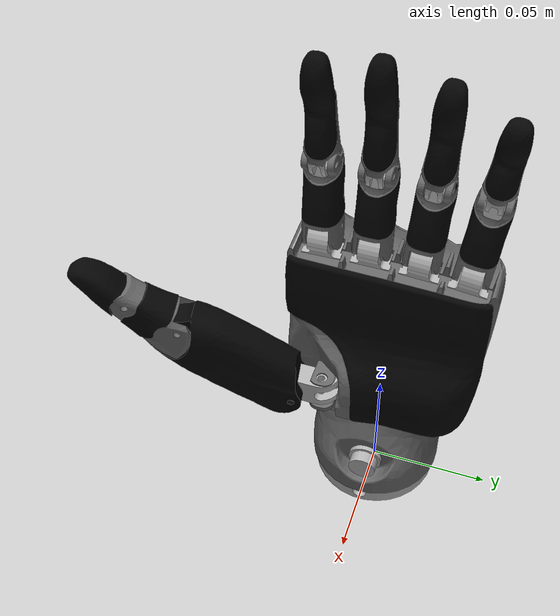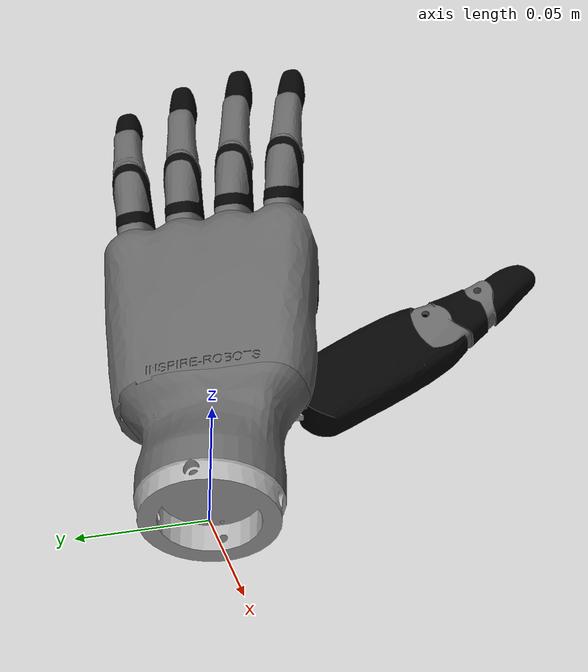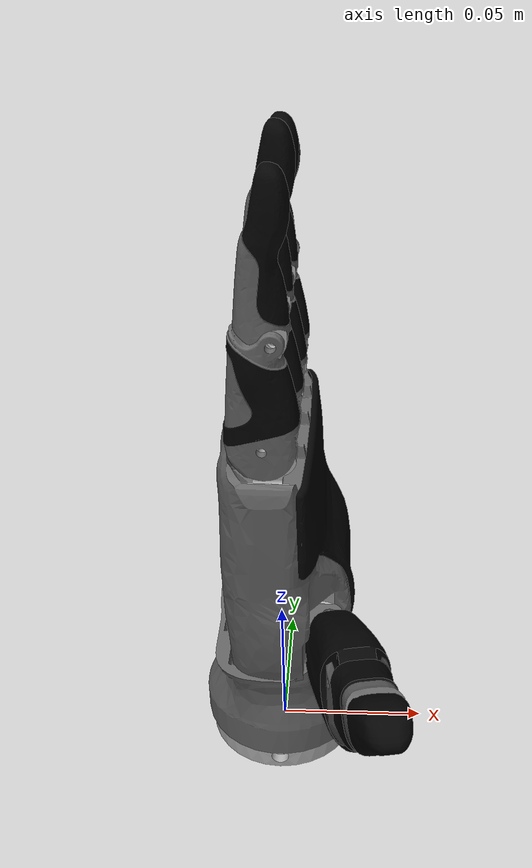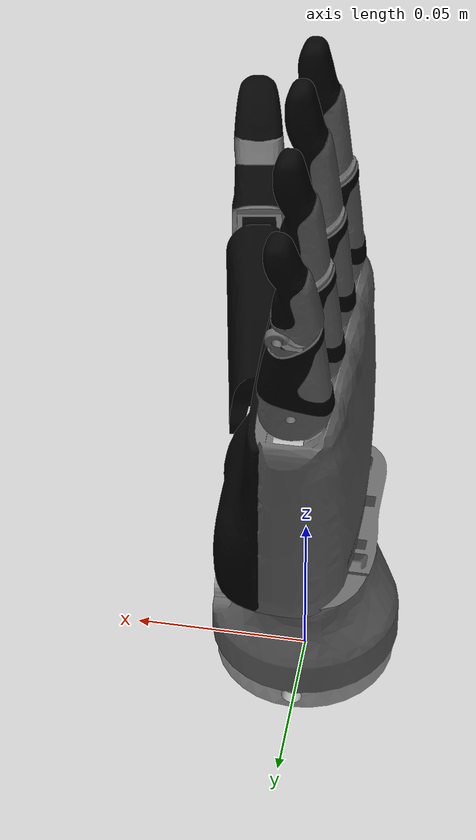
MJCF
<mujoco model="inspire_hand_left">
  <compiler angle="radian" autolimits="true" />
  <option gravity="0 0 0" timestep="0.001" />
  <visual>
    <global offwidth="3840" offheight="2160" />
  </visual>
  <asset>
    <mesh name="left_base_link_visual000" content_type="model/obj" file="meshes/visual/left_base_link_visual000.obj" />
    <mesh name="left_base_link_visual001" content_type="model/obj" file="meshes/visual/left_base_link_visual001.obj" />
    <mesh name="left_base_link_visual002" content_type="model/obj" file="meshes/visual/left_base_link_visual002.obj" />
    <mesh name="left_base_link_visual003" content_type="model/obj" file="meshes/visual/left_base_link_visual003.obj" />
    <mesh name="left_base_link_visual004" content_type="model/obj" file="meshes/visual/left_base_link_visual004.obj" />
    <mesh name="left_thumb_proximal_base" content_type="model/obj" file="meshes/visual/left_thumb_proximal_base.obj" />
    <mesh name="left_thumb_proximal_base_collision000" content_type="model/obj" file="meshes/collision/left_thumb_proximal_base_collision000.obj" />
    <mesh name="left_thumb_proximal_base_collision001" content_type="model/obj" file="meshes/collision/left_thumb_proximal_base_collision001.obj" />
    <mesh name="left_thumb_proximal" content_type="model/obj" file="meshes/visual/left_thumb_proximal.obj" />
    <mesh name="left_thumb_proximal_collision000" content_type="model/obj" file="meshes/collision/left_thumb_proximal_collision000.obj" />
    <mesh name="left_thumb_intermediate_visual000" content_type="model/obj" file="meshes/visual/left_thumb_intermediate_visual000.obj" />
    <mesh name="left_thumb_intermediate_visual001" content_type="model/obj" file="meshes/visual/left_thumb_intermediate_visual001.obj" />
    <mesh name="left_thumb_intermediate_visual002" content_type="model/obj" file="meshes/visual/left_thumb_intermediate_visual002.obj" />
    <mesh name="left_thumb_intermediate_collision000" content_type="model/obj" file="meshes/collision/left_thumb_intermediate_collision000.obj" />
    <mesh name="left_thumb_distal_visual000" content_type="model/obj" file="meshes/visual/left_thumb_distal_visual000.obj" />
    <mesh name="left_thumb_distal_visual001" content_type="model/obj" file="meshes/visual/left_thumb_distal_visual001.obj" />
    <mesh name="left_thumb_distal_collision000" content_type="model/obj" file="meshes/collision/left_thumb_distal_collision000.obj" />
    <mesh name="left_thumb_distal_collision001" content_type="model/obj" file="meshes/collision/left_thumb_distal_collision001.obj" />
    <mesh name="left_index_proximal_visual000" content_type="model/obj" file="meshes/visual/left_index_proximal_visual000.obj" />
    <mesh name="left_index_proximal_visual001" content_type="model/obj" file="meshes/visual/left_index_proximal_visual001.obj" />
    <mesh name="left_index_proximal_collision000" content_type="model/obj" file="meshes/collision/left_index_proximal_collision000.obj" />
    <mesh name="left_index_proximal_collision001" content_type="model/obj" file="meshes/collision/left_index_proximal_collision001.obj" />
    <mesh name="left_index_intermediate_visual000" content_type="model/obj" file="meshes/visual/left_index_intermediate_visual000.obj" />
    <mesh name="left_index_intermediate_visual001" content_type="model/obj" file="meshes/visual/left_index_intermediate_visual001.obj" />
    <mesh name="left_index_intermediate_visual002" content_type="model/obj" file="meshes/visual/left_index_intermediate_visual002.obj" />
    <mesh name="left_index_intermediate_collision000" content_type="model/obj" file="meshes/collision/left_index_intermediate_collision000.obj" />
    <mesh name="left_index_intermediate_collision001" content_type="model/obj" file="meshes/collision/left_index_intermediate_collision001.obj" />
    <mesh name="left_index_intermediate_collision002" content_type="model/obj" file="meshes/collision/left_index_intermediate_collision002.obj" />
    <mesh name="left_middle_intermediate_visual000" content_type="model/obj" file="meshes/visual/left_middle_intermediate_visual000.obj" />
    <mesh name="left_middle_intermediate_visual001" content_type="model/obj" file="meshes/visual/left_middle_intermediate_visual001.obj" />
    <mesh name="left_middle_intermediate_visual002" content_type="model/obj" file="meshes/visual/left_middle_intermediate_visual002.obj" />
    <mesh name="left_middle_intermediate_collision000" content_type="model/obj" file="meshes/collision/left_middle_intermediate_collision000.obj" />
    <mesh name="left_pinky_intermediate_visual000" content_type="model/obj" file="meshes/visual/left_pinky_intermediate_visual000.obj" />
    <mesh name="left_pinky_intermediate_visual001" content_type="model/obj" file="meshes/visual/left_pinky_intermediate_visual001.obj" />
    <mesh name="left_pinky_intermediate_visual002" content_type="model/obj" file="meshes/visual/left_pinky_intermediate_visual002.obj" />
    <mesh name="left_pinky_intermediate_collision000" content_type="model/obj" file="meshes/collision/left_pinky_intermediate_collision000.obj" />
    <material name="left_base_link_visual000_material" rgba="0.40000000 0.40000000 0.40000000 1" />
    <material name="left_base_link_visual001_material" rgba="0.69803922 0.69803922 0.69803922 1" />
    <material name="left_base_link_visual002_material" rgba="0.01568627 0.01568627 0.01568627 1" />
    <material name="left_base_link_visual003_material" rgba="0.40000000 0.40000000 0.40000000 1" />
    <material name="left_base_link_visual004_material" rgba="0.69803922 0.69803922 0.69803922 1" />
    <material name="left_thumb_proximal_base_material" rgba="0.69803922 0.69803922 0.69803922 1" />
    <material name="left_thumb_proximal_material" rgba="0.01568627 0.01568627 0.01568627 1" />
    <material name="left_thumb_intermediate_visual000_material" rgba="0.40000000 0.40000000 0.40000000 1" />
    <material name="left_thumb_intermediate_visual001_material" rgba="0.40000000 0.40000000 0.40000000 1" />
    <material name="left_thumb_intermediate_visual002_material" rgba="0.01568627 0.01568627 0.01568627 1" />
    <material name="left_thumb_distal_visual000_material" rgba="0.69803922 0.69803922 0.69803922 1" />
    <material name="left_thumb_distal_visual001_material" rgba="0.01568627 0.01568627 0.01568627 1" />
    <material name="left_index_proximal_visual000_material" rgba="0.40000000 0.40000000 0.40000000 1" />
    <material name="left_index_proximal_visual001_material" rgba="0.01568627 0.01568627 0.01568627 1" />
    <material name="left_index_intermediate_visual000_material" rgba="0.40000000 0.40000000 0.40000000 1" />
    <material name="left_index_intermediate_visual001_material" rgba="0.69803922 0.69803922 0.69803922 1" />
    <material name="left_index_intermediate_visual002_material" rgba="0.01568627 0.01568627 0.01568627 1" />
    <material name="left_middle_intermediate_visual000_material" rgba="0.40000000 0.40000000 0.40000000 1" />
    <material name="left_middle_intermediate_visual001_material" rgba="0.69803922 0.69803922 0.69803922 1" />
    <material name="left_middle_intermediate_visual002_material" rgba="0.01568627 0.01568627 0.01568627 1" />
    <material name="left_pinky_intermediate_visual000_material" rgba="0.69803922 0.69803922 0.69803922 1" />
    <material name="left_pinky_intermediate_visual001_material" rgba="0.40000000 0.40000000 0.40000000 1" />
    <material name="left_pinky_intermediate_visual002_material" rgba="0.01568627 0.01568627 0.01568627 1" />
    <texture type="skybox" builtin="gradient" rgb1="1 1 1" rgb2="1 1 1" width="32" height="512" />
  </asset>
  <worldbody>
    <light pos="0 0 5" dir="0 0 -1" directional="true" />
    <body name="hand_root">
      <joint name="hand_root_joint" type="free"/>
      <body name="hand_base_link" quat="9.38186e-07 -9.38186e-07 -0.707107 0.707107">
        <inertial pos="-0.0025264 -0.066047 -0.0019598" quat="0.993005 -0.113528 -0.0210604 0.0246792" mass="0.14143" diaginertia="0.000122991 8.41186e-05 7.61951e-05" />
        <geom name="hand_base_link_left_base_link_visual000" type="mesh" contype="0" conaffinity="0" group="1" density="0" mesh="left_base_link_visual000" material="left_base_link_visual000_material" />
        <geom name="hand_base_link_left_base_link_visual001" type="mesh" contype="0" conaffinity="0" group="1" density="0" mesh="left_base_link_visual001" material="left_base_link_visual001_material" />
        <geom name="hand_base_link_left_base_link_visual002" type="mesh" contype="0" conaffinity="0" group="1" density="0" mesh="left_base_link_visual002" material="left_base_link_visual002_material" />
        <geom name="hand_base_link_left_base_link_visual003" type="mesh" contype="0" conaffinity="0" group="1" density="0" mesh="left_base_link_visual003" material="left_base_link_visual003_material" />
        <geom name="hand_base_link_left_base_link_visual004" type="mesh" contype="0" conaffinity="0" group="1" density="0" mesh="left_base_link_visual004" material="left_base_link_visual004_material" />
        <geom size="0.028 0.0139" pos="0 -0.0136 0" quat="0.707109 0.707105 0 0" type="cylinder" group="3" />
        <geom size="0.01955 0.0101 0.0287" pos="-0.0032 -0.038 0" type="box" group="3" />
        <geom size="0.01955 0.02 0.0407" pos="-0.0032 -0.0682 0" type="box" group="3" />
        <geom size="0.0161 0.02 0.0407" pos="0 -0.1081 0" type="box" group="3" />
        <geom size="0.00625 0.00555 0.00445" pos="-0.0016 -0.134 -0.0309" type="box" group="3" />
        <geom size="0.00625 0.00555 0.00445" pos="-0.0016 -0.134 -0.0118" type="box" group="3" />
        <geom size="0.00625 0.00555 0.00445" pos="-0.0016 -0.134 0.007" type="box" group="3" />
        <geom size="0.00625 0.00555 0.00445" pos="-0.0016 -0.134 0.0262" type="box" group="3" />
        <body name="thumb_proximal_base" pos="-0.01696 -0.0691 0.02045" quat="0.499998 0.5 -0.5 0.500002">
          <inertial pos="0.0048817 0.0009382 -0.00722" quat="0.408023 0.323596 0.515015 0.680854" mass="0.0018869" diaginertia="8.66026e-08 6.8732e-08 4.94194e-08" />
          <joint name="thumb_proximal_yaw_joint" pos="0 0 0" axis="0 0 1" range="0 1.308" actuatorfrcrange="-1 1" damping="0.1" armature="0.0002" frictionloss="0.0" />
          <geom name="thumb_proximal_base_left_thumb_proximal_base_visual" type="mesh" contype="0" conaffinity="0" group="1" density="0" mesh="left_thumb_proximal_base" material="left_thumb_proximal_base_material" />
          <geom name="thumb_proximal_base_collision_part000" type="mesh" mesh="left_thumb_proximal_base_collision000" group="3" />
          <geom name="thumb_proximal_base_collision_part001" type="mesh" mesh="left_thumb_proximal_base_collision001" group="3" />
          <body name="thumb_proximal" pos="0.0099867 0.0098242 -0.0089" quat="0.704571 -0.704573 -0.0598169 0.0598167">
            <inertial pos="0.021932 -0.012785 -0.0080386" quat="0.254474 0.660716 -0.251893 0.659733" mass="0.0066075" diaginertia="2.78601e-06 2.43933e-06 8.64566e-07" />
            <joint name="thumb_proximal_pitch_joint" pos="0 0 0" axis="0 0 -1" range="0 0.6" actuatorfrcrange="-1 1" damping="0.1" armature="0.0002" frictionloss="0.0" />
            <geom name="thumb_proximal_left_thumb_proximal_visual" type="mesh" contype="0" conaffinity="0" group="1" density="0" mesh="left_thumb_proximal" material="left_thumb_proximal_material" />
            <geom type="mesh" mesh="left_thumb_proximal_collision000" group="3" />
            <body name="thumb_intermediate" pos="0.04407 -0.034553 -0.0008">
              <inertial pos="0.0095544 0.0016282 -0.0071997" quat="0.307389 0.636718 -0.307548 0.636802" mass="0.0037847" diaginertia="4.6531e-07 4.48089e-07 2.45661e-07" />
              <joint name="thumb_intermediate_joint" pos="0 0 0" axis="0 0 -1" range="0 0.8" actuatorfrcrange="-1 1" damping="0.0" armature="0.0" frictionloss="0.0" />
              <geom name="thumb_intermediate_left_thumb_intermediate_visual000" type="mesh" contype="0" conaffinity="0" group="1" density="0" mesh="left_thumb_intermediate_visual000" material="left_thumb_intermediate_visual000_material" />
              <geom name="thumb_intermediate_left_thumb_intermediate_visual001" type="mesh" contype="0" conaffinity="0" group="1" density="0" mesh="left_thumb_intermediate_visual001" material="left_thumb_intermediate_visual001_material" />
              <geom name="thumb_intermediate_left_thumb_intermediate_visual002" type="mesh" contype="0" conaffinity="0" group="1" density="0" mesh="left_thumb_intermediate_visual002" material="left_thumb_intermediate_visual002_material" />
              <geom type="mesh" mesh="left_thumb_intermediate_collision000" group="3" />
              <body name="thumb_distal" pos="0.020248 -0.010156 -0.0012">
                <inertial pos="0.0092888 -0.0049529 -0.0060033" quat="0.266294 0.655967 -0.262806 0.655537" mass="0.0033441" diaginertia="2.0026e-07 1.95247e-07 8.1593e-08" />
                <joint name="thumb_distal_joint" pos="0 0 0" axis="0 0 -1" range="0 0.4" actuatorfrcrange="-1 1" damping="0.0" armature="0.0" frictionloss="0.0" />
                <geom name="thumb_distal_left_thumb_distal_visual000" type="mesh" contype="0" conaffinity="0" group="1" density="0" mesh="left_thumb_distal_visual000" material="left_thumb_distal_visual000_material" />
                <geom name="thumb_distal_left_thumb_distal_visual001" type="mesh" contype="0" conaffinity="0" group="1" density="0" mesh="left_thumb_distal_visual001" material="left_thumb_distal_visual001_material" />
                <geom name="thumb_distal_collision_part000" type="mesh" mesh="left_thumb_distal_collision000" group="3" />
                <geom name="thumb_distal_collision_part001" type="mesh" mesh="left_thumb_distal_collision001" group="3" />
                <body name="thumb_tip" pos="0.0202 -0.014 -0.006" />
              </body>
            </body>
          </body>
        </body>
        <body name="index_proximal" pos="0.00028533 -0.13653 0.032268" quat="0.999848 -0.0174526 0 0">
          <inertial pos="0.0012259 -0.011942 -0.0060001" quat="0.49121 0.50867 -0.491172 0.508643" mass="0.0042403" diaginertia="6.9398e-07 6.62871e-07 2.10909e-07" />
          <joint name="index_proximal_joint" pos="0 0 0" axis="0 0 -1" range="0 1.47" actuatorfrcrange="-1 1" damping="0.1" armature="0.0002" frictionloss="0.0" />
          <geom name="index_proximal_left_index_proximal_visual000" type="mesh" contype="0" conaffinity="0" group="1" density="0" mesh="left_index_proximal_visual000" material="left_index_proximal_visual000_material" />
          <geom name="index_proximal_left_index_proximal_visual001" type="mesh" contype="0" conaffinity="0" group="1" density="0" mesh="left_index_proximal_visual001" material="left_index_proximal_visual001_material" />
          <geom name="index_proximal_collision_part000" type="mesh" mesh="left_index_proximal_collision000" group="3" />
          <geom name="index_proximal_collision_part001" type="mesh" mesh="left_index_proximal_collision001" group="3" />
          <body name="index_intermediate" pos="-0.0026138 -0.032026 -0.001">
            <inertial pos="0.0019697 -0.019589 -0.005" quat="0.531152 0.466773 -0.531153 0.466773" mass="0.0045683" diaginertia="7.8179e-07 7.72465e-07 8.47212e-08" />
            <joint name="index_intermediate_joint" pos="0 0 0" axis="0 0 -1" range="-0.04545 1.56" actuatorfrcrange="-1 1" damping="0.0" armature="0.0" frictionloss="0.0" />
            <geom name="index_intermediate_left_index_intermediate_visual000" type="mesh" contype="0" conaffinity="0" group="1" density="0" mesh="left_index_intermediate_visual000" material="left_index_intermediate_visual000_material" />
            <geom name="index_intermediate_left_index_intermediate_visual001" type="mesh" contype="0" conaffinity="0" group="1" density="0" mesh="left_index_intermediate_visual001" material="left_index_intermediate_visual001_material" />
            <geom name="index_intermediate_left_index_intermediate_visual002" type="mesh" contype="0" conaffinity="0" group="1" density="0" mesh="left_index_intermediate_visual002" material="left_index_intermediate_visual002_material" />
            <geom name="index_intermediate_collision_part000" type="mesh" mesh="left_index_intermediate_collision000" group="3" />
            <geom name="index_intermediate_collision_part001" type="mesh" mesh="left_index_intermediate_collision001" group="3" />
            <geom name="index_intermediate_collision_part002" type="mesh" mesh="left_index_intermediate_collision002" group="3" />
            <body name="index_tip" pos="-0.0008 -0.045 -0.005" />
          </body>
        </body>
        <body name="middle_proximal" pos="0.00028533 -0.1371 0.01295">
          <inertial pos="0.001297 -0.011934 -0.0060001" quat="0.489693 0.510131 -0.489653 0.510105" mass="0.0042403" diaginertia="6.9397e-07 6.62865e-07 2.10915e-07" />
          <joint name="middle_proximal_joint" pos="0 0 0" axis="0 0 -1" range="0 1.47" actuatorfrcrange="-1 1" damping="0.1" armature="0.0002" frictionloss="0.0" />
          <geom name="middle_proximal_left_index_proximal_visual000" type="mesh" contype="0" conaffinity="0" group="1" density="0" mesh="left_index_proximal_visual000" material="left_index_proximal_visual000_material" />
          <geom name="middle_proximal_left_index_proximal_visual001" type="mesh" contype="0" conaffinity="0" group="1" density="0" mesh="left_index_proximal_visual001" material="left_index_proximal_visual001_material" />
          <geom name="middle_proximal_collision_part000" type="mesh" mesh="left_index_proximal_collision000" group="3" />
          <geom name="middle_proximal_collision_part001" type="mesh" mesh="left_index_proximal_collision001" group="3" />
          <body name="middle_intermediate" pos="-0.0024229 -0.032041 -0.001">
            <inertial pos="0.001921 -0.020796 -0.005" quat="0.531627 0.466148 -0.531705 0.466229" mass="0.0050396" diaginertia="9.8384e-07 9.73279e-07 9.14014e-08" />
            <joint name="middle_intermediate_joint" pos="0 0 0" axis="0 0 -1" range="-0.04545 1.56" actuatorfrcrange="-1 1" damping="0.0" armature="0.0" frictionloss="0.0" />
            <geom name="middle_intermediate_left_middle_intermediate_visual000" type="mesh" contype="0" conaffinity="0" group="1" density="0" mesh="left_middle_intermediate_visual000" material="left_middle_intermediate_visual000_material" />
            <geom name="middle_intermediate_left_middle_intermediate_visual001" type="mesh" contype="0" conaffinity="0" group="1" density="0" mesh="left_middle_intermediate_visual001" material="left_middle_intermediate_visual001_material" />
            <geom name="middle_intermediate_left_middle_intermediate_visual002" type="mesh" contype="0" conaffinity="0" group="1" density="0" mesh="left_middle_intermediate_visual002" material="left_middle_intermediate_visual002_material" />
            <geom type="mesh" mesh="left_middle_intermediate_collision000" group="3" />
            <body name="middle_tip" pos="-0.001 -0.048 -0.005" />
          </body>
        </body>
        <body name="ring_proximal" pos="0.00028533 -0.13691 -0.0062872" quat="0.999657 0.026177 0 0">
          <inertial pos="0.001297 -0.011934 -0.0060002" quat="0.489691 0.510129 -0.489654 0.510107" mass="0.0042403" diaginertia="6.9397e-07 6.62865e-07 2.10915e-07" />
          <joint name="ring_proximal_joint" pos="0 0 0" axis="0 0 -1" range="0 1.47" actuatorfrcrange="-1 1" damping="0.1" armature="0.0002" frictionloss="0.0" />
          <geom name="ring_proximal_left_index_proximal_visual000" type="mesh" contype="0" conaffinity="0" group="1" density="0" mesh="left_index_proximal_visual000" material="left_index_proximal_visual000_material" />
          <geom name="ring_proximal_left_index_proximal_visual001" type="mesh" contype="0" conaffinity="0" group="1" density="0" mesh="left_index_proximal_visual001" material="left_index_proximal_visual001_material" />
          <geom name="ring_proximal_collision_part000" type="mesh" mesh="left_index_proximal_collision000" group="3" />
          <geom name="ring_proximal_collision_part001" type="mesh" mesh="left_index_proximal_collision001" group="3" />
          <body name="ring_intermediate" pos="-0.0024229 -0.032041 -0.001">
            <inertial pos="0.0021753 -0.019567 -0.005" quat="0.528695 0.469554 -0.528695 0.469554" mass="0.0045683" diaginertia="7.8177e-07 7.72448e-07 8.4722e-08" />
            <joint name="ring_intermediate_joint" pos="0 0 0" axis="0 0 -1" range="-0.04545 1.56" actuatorfrcrange="-1 1" damping="0.0" armature="0.0" frictionloss="0.0" />
            <geom name="ring_intermediate_left_index_intermediate_visual000" type="mesh" contype="0" conaffinity="0" group="1" density="0" mesh="left_index_intermediate_visual000" material="left_index_intermediate_visual000_material" />
            <geom name="ring_intermediate_left_index_intermediate_visual001" type="mesh" contype="0" conaffinity="0" group="1" density="0" mesh="left_index_intermediate_visual001" material="left_index_intermediate_visual001_material" />
            <geom name="ring_intermediate_left_index_intermediate_visual002" type="mesh" contype="0" conaffinity="0" group="1" density="0" mesh="left_index_intermediate_visual002" material="left_index_intermediate_visual002_material" />
            <geom name="ring_intermediate_collision_part000" type="mesh" mesh="left_index_intermediate_collision000" group="3" />
            <geom name="ring_intermediate_collision_part001" type="mesh" mesh="left_index_intermediate_collision001" group="3" />
            <geom name="ring_intermediate_collision_part002" type="mesh" mesh="left_index_intermediate_collision002" group="3" />
            <body name="ring_tip" pos="-0.0008 -0.045 -0.005" />
          </body>
        </body>
        <body name="pinky_proximal" pos="0.00028533 -0.13571 -0.025488" quat="0.99863 0.0523361 0 0">
          <inertial pos="0.001297 -0.011934 -0.0060001" quat="0.489693 0.51013 -0.489653 0.510106" mass="0.0042403" diaginertia="6.9397e-07 6.62865e-07 2.10915e-07" />
          <joint name="pinky_proximal_joint" pos="0 0 0" axis="0 0 -1" range="0 1.47" actuatorfrcrange="-1 1" damping="0.1" armature="0.0002" frictionloss="0.0" />
          <geom name="pinky_proximal_left_index_proximal_visual000" type="mesh" contype="0" conaffinity="0" group="1" density="0" mesh="left_index_proximal_visual000" material="left_index_proximal_visual000_material" />
          <geom name="pinky_proximal_left_index_proximal_visual001" type="mesh" contype="0" conaffinity="0" group="1" density="0" mesh="left_index_proximal_visual001" material="left_index_proximal_visual001_material" />
          <geom name="pinky_proximal_collision_part000" type="mesh" mesh="left_index_proximal_collision000" group="3" />
          <geom name="pinky_proximal_collision_part001" type="mesh" mesh="left_index_proximal_collision001" group="3" />
          <body name="pinky_intermediate" pos="-0.0024229 -0.032041 -0.001">
            <inertial pos="0.0024748 -0.016203 -0.0050031" quat="0.528862 0.47398 -0.524799 0.469291" mass="0.0035996" diaginertia="4.4867e-07 4.43723e-07 6.56538e-08" />
            <joint name="pinky_intermediate_joint" pos="0 0 0" axis="0 0 -1" range="-0.04545 1.56" actuatorfrcrange="-1 1" damping="0.0" armature="0.0" frictionloss="0.0" />
            <geom name="pinky_intermediate_left_pinky_intermediate_visual000" type="mesh" contype="0" conaffinity="0" group="1" density="0" mesh="left_pinky_intermediate_visual000" material="left_pinky_intermediate_visual000_material" />
            <geom name="pinky_intermediate_left_pinky_intermediate_visual001" type="mesh" contype="0" conaffinity="0" group="1" density="0" mesh="left_pinky_intermediate_visual001" material="left_pinky_intermediate_visual001_material" />
            <geom name="pinky_intermediate_left_pinky_intermediate_visual002" type="mesh" contype="0" conaffinity="0" group="1" density="0" mesh="left_pinky_intermediate_visual002" material="left_pinky_intermediate_visual002_material" />
            <geom type="mesh" mesh="left_pinky_intermediate_collision000" group="3" />
            <body name="pinky_tip" pos="-0.0008 -0.037 -0.005" />
          </body>
        </body>
      </body>
    </body>
  </worldbody>
  <contact>
    <exclude name="ex_hand_base_link_thumb_proximal_base" body1="hand_base_link" body2="thumb_proximal_base" />
    <exclude name="ex_thumb_proximal_base_thumb_proximal" body1="thumb_proximal_base" body2="thumb_proximal" />
    <exclude name="ex_thumb_proximal_thumb_intermediate" body1="thumb_proximal" body2="thumb_intermediate" />
    <exclude name="ex_thumb_intermediate_thumb_distal" body1="thumb_intermediate" body2="thumb_distal" />
    <exclude name="ex_thumb_distal_thumb_tip" body1="thumb_distal" body2="thumb_tip" />
    <exclude name="ex_hand_base_link_index_proximal" body1="hand_base_link" body2="index_proximal" />
    <exclude name="ex_index_proximal_index_intermediate" body1="index_proximal" body2="index_intermediate" />
    <exclude name="ex_index_intermediate_index_tip" body1="index_intermediate" body2="index_tip" />
    <exclude name="ex_hand_base_link_middle_proximal" body1="hand_base_link" body2="middle_proximal" />
    <exclude name="ex_middle_proximal_middle_intermediate" body1="middle_proximal" body2="middle_intermediate" />
    <exclude name="ex_middle_intermediate_middle_tip" body1="middle_intermediate" body2="middle_tip" />
    <exclude name="ex_hand_base_link_ring_proximal" body1="hand_base_link" body2="ring_proximal" />
    <exclude name="ex_ring_proximal_ring_intermediate" body1="ring_proximal" body2="ring_intermediate" />
    <exclude name="ex_ring_intermediate_ring_tip" body1="ring_intermediate" body2="ring_tip" />
    <exclude name="ex_hand_base_link_pinky_proximal" body1="hand_base_link" body2="pinky_proximal" />
    <exclude name="ex_pinky_proximal_pinky_intermediate" body1="pinky_proximal" body2="pinky_intermediate" />
    <exclude name="ex_pinky_intermediate_pinky_tip" body1="pinky_intermediate" body2="pinky_tip" />
    <exclude name="ex_hand_base_link_thumb_proximal" body1="hand_base_link" body2="thumb_proximal" />
  </contact>
  <equality>
    <joint name="thumb_intermediate_joint_mimic" joint1="thumb_intermediate_joint" joint2="thumb_proximal_pitch_joint" polycoef="0 1.334 0 0 0" solref="0.002 1" solimp="0.9 0.99 0.001" />
    <joint name="thumb_distal_joint_mimic" joint1="thumb_distal_joint" joint2="thumb_proximal_pitch_joint" polycoef="0 0.667 0 0 0" solref="0.002 1" solimp="0.9 0.99 0.001" />
    <joint name="index_intermediate_joint_mimic" joint1="index_intermediate_joint" joint2="index_proximal_joint" polycoef="-0.04545 1.06399 0 0 0" solref="0.002 1" solimp="0.9 0.99 0.001" />
    <joint name="middle_intermediate_joint_mimic" joint1="middle_intermediate_joint" joint2="middle_proximal_joint" polycoef="-0.04545 1.06399 0 0 0" solref="0.002 1" solimp="0.9 0.99 0.001" />
    <joint name="ring_intermediate_joint_mimic" joint1="ring_intermediate_joint" joint2="ring_proximal_joint" polycoef="-0.04545 1.06399 0 0 0" solref="0.002 1" solimp="0.9 0.99 0.001" />
    <joint name="pinky_intermediate_joint_mimic" joint1="pinky_intermediate_joint" joint2="pinky_proximal_joint" polycoef="-0.04545 1.06399 0 0 0" solref="0.002 1" solimp="0.9 0.99 0.001" />
  </equality>
  <actuator>
    <position name="thumb_proximal_yaw_joint_actuator" joint="thumb_proximal_yaw_joint" kp="1" forcerange="-1 1" ctrlrange="0 1.308" />
    <position name="thumb_proximal_pitch_joint_actuator" joint="thumb_proximal_pitch_joint" kp="1" forcerange="-1 1" ctrlrange="0 0.6" />
    <position name="index_proximal_joint_actuator" joint="index_proximal_joint" kp="1" forcerange="-1 1" ctrlrange="0 1.47" />
    <position name="middle_proximal_joint_actuator" joint="middle_proximal_joint" kp="1" forcerange="-1 1" ctrlrange="0 1.47" />
    <position name="ring_proximal_joint_actuator" joint="ring_proximal_joint" kp="1" forcerange="-1 1" ctrlrange="0 1.47" />
    <position name="pinky_proximal_joint_actuator" joint="pinky_proximal_joint" kp="1" forcerange="-1 1" ctrlrange="0 1.47" />
  </actuator>
</mujoco>
